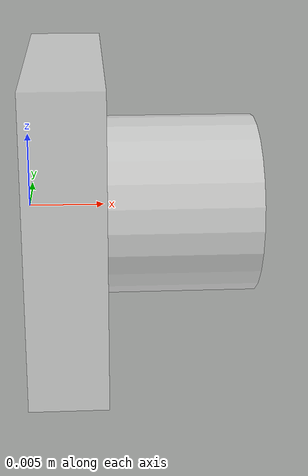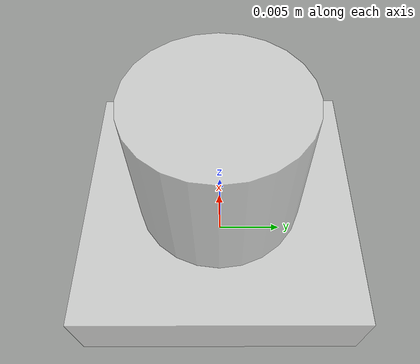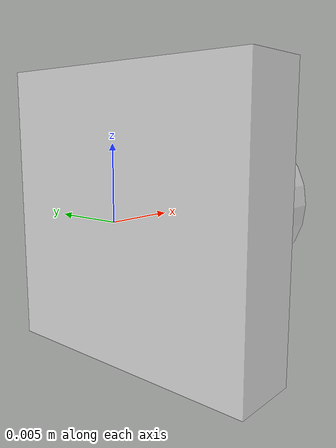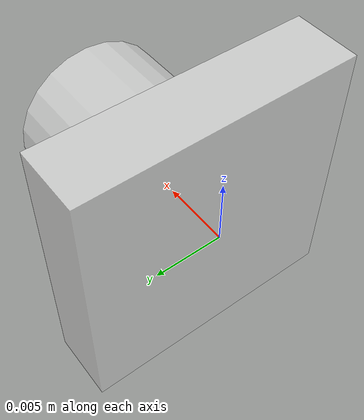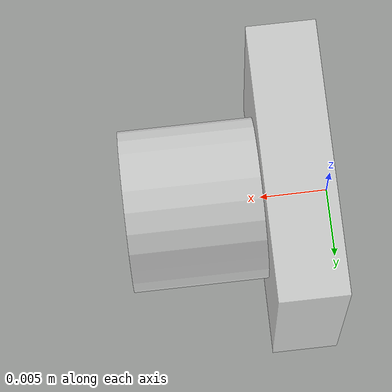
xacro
<?xml version="1.0"?>
<robot xmlns:xacro="http://www.ros.org/wiki/xacro">

    <!-- dimensions of the camera -->
    <xacro:property name="cam_length" value="0.005" />
    <xacro:property name="cam_width" value="0.02" />
    <xacro:property name="cam_height" value="0.02" />
    <xacro:property name="lense_length" value="0.01" />
    <xacro:property name="lense_diameter" value="0.012" />

    <material name="cam">
        <color rgba="1.0 1.0 1.0 0.5" />
    </material>

    <link name="camera">
        <visual>
            <origin xyz="${cam_length/2} 0 0" rpy="0 0 0"/>
            <geometry>
                <box size="${cam_length} ${cam_width} ${cam_height}" />
            </geometry>
            <material name="cam" />
        </visual>
        <visual>
            <origin xyz="${lense_length/2+cam_length} 0 0" rpy="0 ${pi/2} 0"/>
            <geometry>
                <cylinder length="${lense_length}" radius="${lense_diameter/2}" />
            </geometry>
            <material name="cam" />
        </visual>
        <collision>
            <origin xyz="${cam_length/2+0.001} 0 0" rpy="0 0 0"/>
            <geometry>
                <box size="${cam_length/2+0.002} ${cam_width} ${cam_height}" />
            </geometry>
        </collision>
        <xacro:inertial_box mass="0.005" x="${cam_length/2+0.002}" y="${cam_width}" z="${cam_height}">
            <origin xyz="0.0 0 0" rpy="0 0 0"/>
        </xacro:inertial_box>
    </link>

    <gazebo reference="camera">
        <material>Gazebo/Orange</material>
    </gazebo>

</robot>
